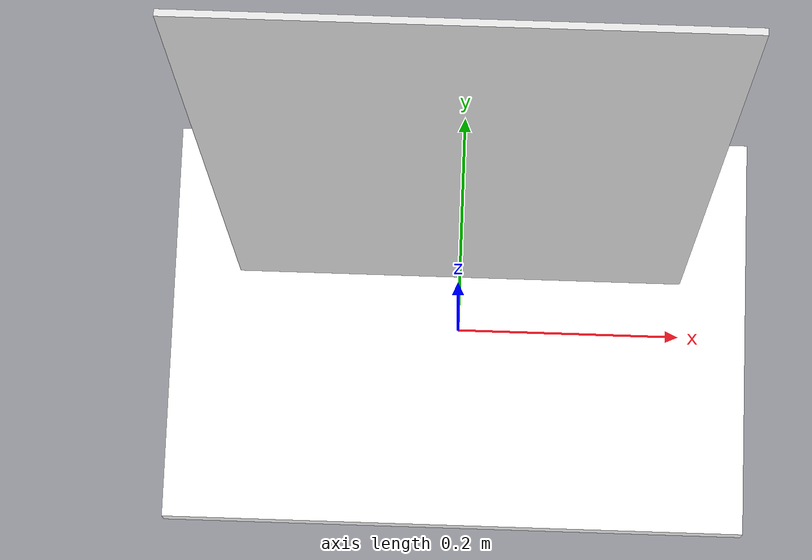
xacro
<?xml version="1.0"?>

<!-- XML namespaces -->
<robot xmlns:sensor="http://playerstage.sourceforge.net/gazebo/xmlschema/#sensor"
       xmlns:controller="http://playerstage.sourceforge.net/gazebo/xmlschema/#controller"
       xmlns:interface="http://playerstage.sourceforge.net/gazebo/xmlschema/#interface"
       xmlns:xacro="http://ros.org/wiki/xacro"
	   name="pi_robot">

	<xacro:macro name="white">
		<material name="white">
			<color rgba="1.0 1.0 1.0 1.0"/>
		</material>
	</xacro:macro>

	<xacro:macro name="black">
		<material name="black">
			<color rgba="0.1 0.1 0.1 1.0"/>
		</material>
	</xacro:macro>

	<xacro:macro name="grey1">
		<material name="grey1">
			<color rgba="0.9 0.9 0.9 1.0"/>
		</material>
	</xacro:macro>

	<xacro:macro name="my_box" params="name lwh xyz rpy mass material *rviz_color">
		<link name="${name}">
			<visual>
				<origin xyz="${xyz}" rpy="${rpy}" />
				<geometry>
					<box size="${lwh}" />
				</geometry>
			    <xacro:insert_block name="rviz_color" />
             </visual>
             <collision>
				<origin xyz="${xyz}" rpy="${rpy}" />
					<geometry>
						<box size="${lwh}" />
					</geometry>
             </collision>
             <xacro:default_inertial mass="${mass}" />
        </link>
        <xacro:default_gazebo name="${name}" material="${material}" />
	</xacro:macro>

    <xacro:macro name="default_gazebo" params="name material">
 		<gazebo reference="${name}">
			<material>${material}</material>
			<selfCollide>false</selfCollide>
			<turnGravityOff>true</turnGravityOff>
		</gazebo>
    </xacro:macro>

 	<!-- ============================   Body   ============================ -->

	<xacro:my_box name="base_link" lwh="0.52 0.36 0.02" xyz="0 0 0" rpy="0 0 0" mass="0.5" material="Gazebo/WhiteEmissive">
		<xacro:white />
	</xacro:my_box>

 	<xacro:my_box name="torso_link" lwh="0.4 0.005 0.75" xyz="0 0 0" rpy="0 0 0" mass="0.5" material="Gazebo/WhiteEmissive">
		<xacro:grey1 />
	</xacro:my_box>

 	<!-- ============================   Arms   ============================ -->

	<!-- =================== Joint Definitions ==================== -->

	<joint name="torso_joint" type="fixed">
    	<parent link="base_link" />
    	<child link="torso_link" />
    	<origin xyz="0 0.05 0.375" rpy="0 0 0" />
	</joint>

	<gazebo reference="pi_robot">
  	</gazebo>
</robot>
